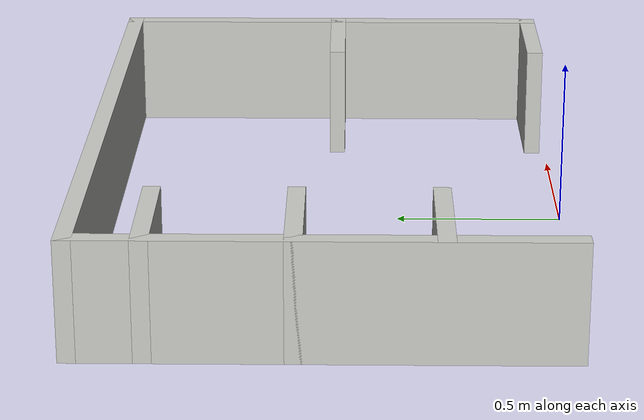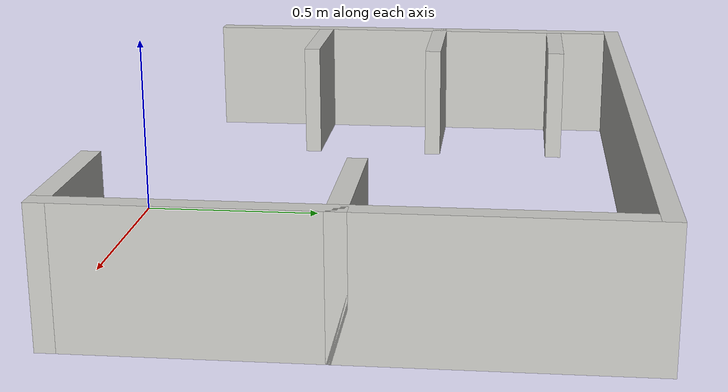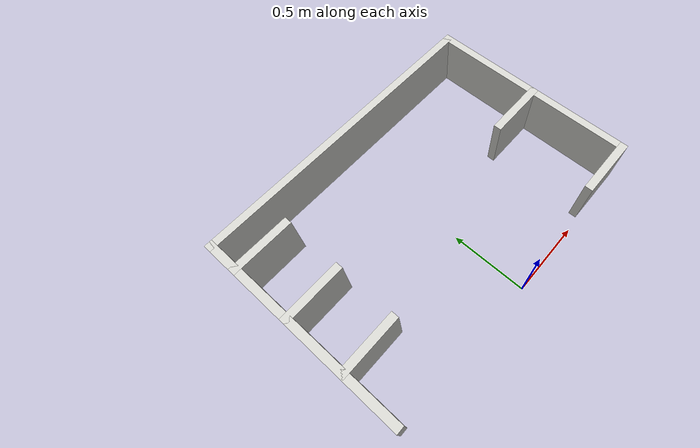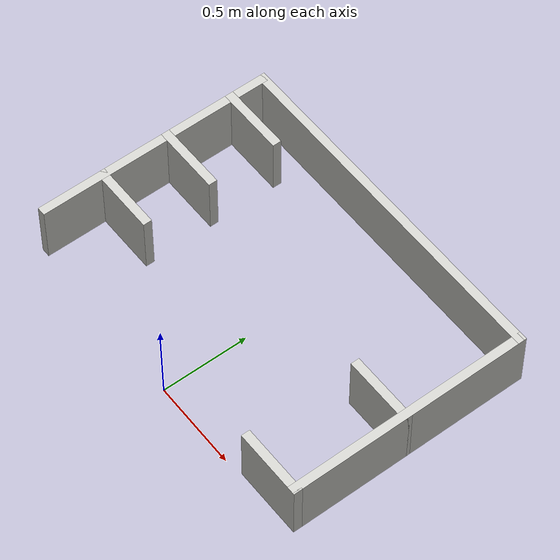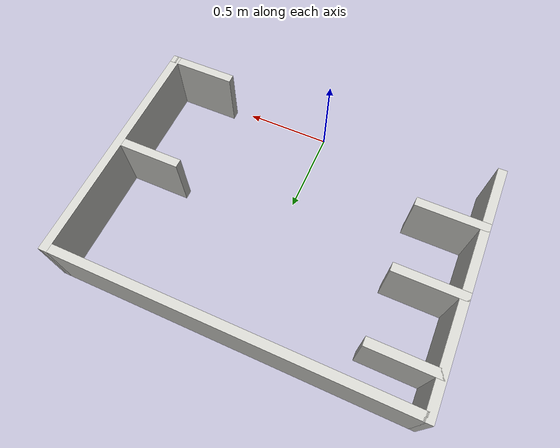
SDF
<sdf version="1.7">
 <world name="__default__">
  <gravity>0 0 -9.8</gravity>
  <magnetic_field>6e-06 2.3e-05 -4.2e-05</magnetic_field>
  <atmosphere type="adiabatic"/>
  <physics type="ode">
   <max_step_size>0.001</max_step_size>
   <real_time_factor>1</real_time_factor>
   <real_time_update_rate>1000</real_time_update_rate>
  </physics>
  <scene><ambient>0.4 0.4 0.4 1</ambient><background>0.7 0.7 0.7 1</background><shadows>1</shadows></scene>
  <spherical_coordinates>
   <surface_model>EARTH_WGS84</surface_model>
   <latitude_deg>0</latitude_deg>
   <longitude_deg>0</longitude_deg>
   <elevation>0</elevation>
   <heading_deg>0</heading_deg>
  </spherical_coordinates>
  <model name="Parallel_Per_Garage">
   <pose>-0.021299 0.703462 0 0 -0 0</pose>
   <link name="Wall_10">
    <collision name="Wall_10_Collision">
     <geometry><box><size>0.4 0.05 0.35</size></box></geometry>
     <pose>0 0 0.175 0 -0 0</pose>
    </collision>
    <visual name="Wall_10_Visual">
     <pose>0 0 0.175 0 -0 0</pose>
     <geometry><box><size>0.4 0.05 0.35</size></box></geometry>
     <material>
      <script><uri>file://media/materials/scripts/gazebo.material</uri><name>Gazebo/CeilingTiled</name></script>
      <ambient>1 1 1 1</ambient>
     </material>
     <meta><layer>0</layer></meta>
    </visual>
    <pose>-0.825 0.0875 0 0 -0 0</pose>
   </link>
   <link name="Wall_12">
    <collision name="Wall_12_Collision">
     <geometry><box><size>0.4 0.05 0.35</size></box></geometry>
     <pose>0 0 0.175 0 -0 0</pose>
    </collision>
    <visual name="Wall_12_Visual">
     <pose>0 0 0.175 0 -0 0</pose>
     <geometry><box><size>0.4 0.05 0.35</size></box></geometry>
     <material>
      <script><uri>file://media/materials/scripts/gazebo.material</uri><name>Gazebo/CeilingTiled</name></script>
      <ambient>1 1 1 1</ambient>
     </material>
     <meta><layer>0</layer></meta>
    </visual>
    <pose>-0.825 0.4875 0 0 -0 0</pose>
   </link>
   <link name="Wall_2">
    <collision name="Wall_2_Collision">
     <geometry><box><size>2.05 0.05 0.35</size></box></geometry>
     <pose>0 0 0.175 0 -0 0</pose>
    </collision>
    <visual name="Wall_2_Visual">
     <pose>0 0 0.175 0 -0 0</pose>
     <geometry><box><size>2.05 0.05 0.35</size></box></geometry>
     <material>
      <script><uri>file://media/materials/scripts/gazebo.material</uri><name>Gazebo/CeilingTiled</name></script>
      <ambient>1 1 1 1</ambient>
     </material>
     <meta><layer>0</layer></meta>
    </visual>
    <pose>0 0.6875 0 0 -0 0</pose>
   </link>
   <link name="Wall_21">
    <collision name="Wall_21_Collision">
     <geometry><box><size>0.4 0.05 0.35</size></box></geometry>
     <pose>0 0 0.175 0 -0 0</pose>
    </collision>
    <visual name="Wall_21_Visual">
     <pose>0 0 0.175 0 -0 0</pose>
     <geometry><box><size>0.4 0.05 0.35</size></box></geometry>
     <material>
      <script><uri>file://media/materials/scripts/gazebo.material</uri><name>Gazebo/CeilingTiled</name></script>
      <ambient>1 1 1 1</ambient>
     </material>
     <meta><layer>0</layer></meta>
    </visual>
    <pose>-0.825 -0.3125 0 0 -0 0</pose>
   </link>
   <link name="Wall_23">
    <collision name="Wall_23_Collision">
     <geometry><box><size>0.4 0.05 0.35</size></box></geometry>
     <pose>0 0 0.175 0 -0 0</pose>
    </collision>
    <visual name="Wall_23_Visual">
     <pose>0 0 0.175 0 -0 0</pose>
     <geometry><box><size>0.4 0.05 0.35</size></box></geometry>
     <material>
      <script><uri>file://media/materials/scripts/gazebo.material</uri><name>Gazebo/CeilingTiled</name></script>
      <ambient>1 1 1 1</ambient>
     </material>
     <meta><layer>0</layer></meta>
    </visual>
    <pose>0.825 -0.6625 0 0 -0 3.14159</pose>
   </link>
   <link name="Wall_4">
    <collision name="Wall_4_Collision">
     <geometry><box><size>1.4 0.05 0.35</size></box></geometry>
     <pose>0 0 0.175 0 -0 0</pose>
    </collision>
    <visual name="Wall_4_Visual">
     <pose>0 0 0.175 0 -0 0</pose>
     <geometry><box><size>1.4 0.05 0.35</size></box></geometry>
     <material>
      <script><uri>file://media/materials/scripts/gazebo.material</uri><name>Gazebo/CeilingTiled</name></script>
      <ambient>1 1 1 1</ambient>
     </material>
     <meta><layer>0</layer></meta>
    </visual>
    <pose>-1 0.0125 0 0 -0 -1.5708</pose>
   </link>
   <link name="Wall_6">
    <collision name="Wall_6_Collision">
     <geometry><box><size>1.4 0.05 0.35</size></box></geometry>
     <pose>0 0 0.175 0 -0 0</pose>
    </collision>
    <visual name="Wall_6_Visual">
     <pose>0 0 0.175 0 -0 0</pose>
     <geometry><box><size>1.4 0.05 0.35</size></box></geometry>
     <material>
      <script><uri>file://media/materials/scripts/gazebo.material</uri><name>Gazebo/CeilingTiled</name></script>
      <ambient>1 1 1 1</ambient>
     </material>
     <meta><layer>0</layer></meta>
    </visual>
    <pose>1 0.0125 0 0 -0 -1.5708</pose>
   </link>
   <link name="Wall_8">
    <collision name="Wall_8_Collision">
     <geometry><box><size>0.4 0.05 0.35</size></box></geometry>
     <pose>0 0 0.175 0 -0 0</pose>
    </collision>
    <visual name="Wall_8_Visual">
     <pose>0 0 0.175 0 -0 0</pose>
     <geometry><box><size>0.4 0.05 0.35</size></box></geometry>
     <material>
      <script><uri>file://media/materials/scripts/gazebo.material</uri><name>Gazebo/CeilingTiled</name></script>
      <ambient>1 1 1 1</ambient>
     </material>
     <meta><layer>0</layer></meta>
    </visual>
    <pose>0.825 -0.0125 0 0 -0 3.14159</pose>
   </link>
   <static>1</static>
  </model>
 </world>
</sdf>
